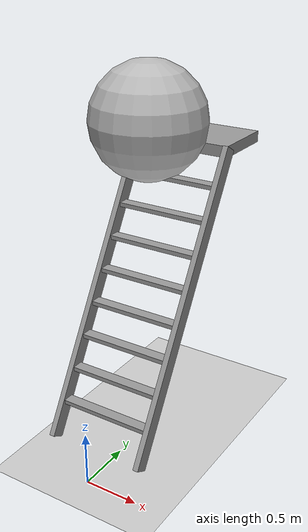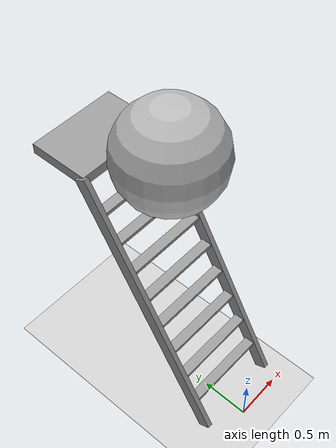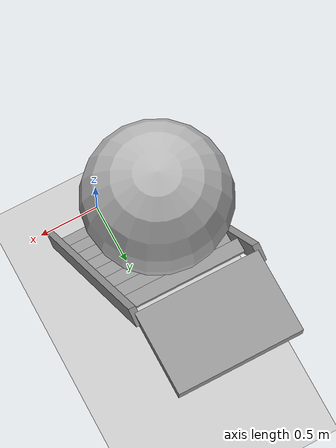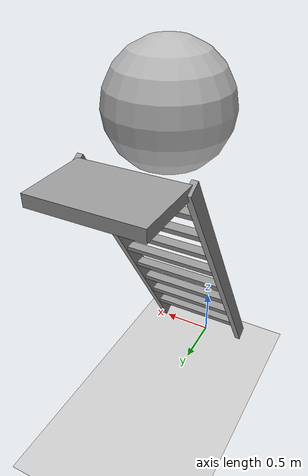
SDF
<sdf version="1.6">
 <world name="default">
  <include><uri>model://ground_plane</uri></include>
  <include><uri>model://ladder_60deg_0rails</uri><pose>0 0.15396 0.266667 0 -0 0</pose></include>
  <light type="directional" name="sun">
   <pose>0 0 10 0 0 0</pose>
   <diffuse>0.8 0.8 0.8 1</diffuse>
   <specular>0.2 0.2 0.2 1</specular>
   <attenuation>
    <range>1000</range>
    <constant>0.9</constant>
    <linear>0.01</linear>
    <quadratic>0.001</quadratic>
   </attenuation>
   <direction>-0.5 0.9 -0.1</direction>
  </light>
  <model name="unit_sphere">
   <pose>0 1 3 0 0 0</pose>
   <link name="only_link">
    <visual name="visual"><geometry><sphere><radius>0.5</radius></sphere></geometry></visual>
    <collision name="collision"><geometry><sphere><radius>0.5</radius></sphere></geometry></collision>
   </link>
  </model>
  <plugin name="sunPlugin" filename="libspicyboi_sun.so"/>
 </world>
</sdf>

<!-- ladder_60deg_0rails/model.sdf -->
<sdf version="1.5">

  <model name= "ladder_60deg_0rails" >
    <static>true</static>
         <link name="step0" >
           <pose>0 0.15396007178390025 0.26666666666666666 0 0 0 </pose>
           <inertial>
             <mass> 9.7548192</mass>
             <inertia>
             <ixx> 0.009571241631672</ixx>
             <iyy> 0.6596303120915761</iyy>
             <izz> 0.666841521540096</izz>
             <ixy>0</ixy>
             <ixz>0</ixz>
             <iyz>0</iyz>
             </inertia>
           </inertial>

           <collision name="collision">
             <geometry>
              <box>
                <size>  0.9  0.1016  0.0381  </size>
              </box>
             </geometry>
           </collision>

          <visual name="visual">
            <geometry>
              <box>
                <size>  0.9  0.1016  0.0381  </size>
              </box>
            </geometry>
            <material>
              <script>
                <uri>file://media/materials/scripts/gazebo.material</uri>
                <name>Gazebo/Grey</name>
              </script>
            </material>
          </visual>
        </link>
         <link name="step1" >
           <pose>0 0.3079201435678005 0.5333333333333333 0 0 0 </pose>
           <inertial>
             <mass> 9.7548192</mass>
             <inertia>
             <ixx> 0.009571241631672</ixx>
             <iyy> 0.6596303120915761</iyy>
             <izz> 0.666841521540096</izz>
             <ixy>0</ixy>
             <ixz>0</ixz>
             <iyz>0</iyz>
             </inertia>
           </inertial>

           <collision name="collision">
             <geometry>
              <box>
                <size>  0.9  0.1016  0.0381  </size>
              </box>
             </geometry>
           </collision>

          <visual name="visual">
            <geometry>
              <box>
                <size>  0.9  0.1016  0.0381  </size>
              </box>
            </geometry>
            <material>
              <script>
                <uri>file://media/materials/scripts/gazebo.material</uri>
                <name>Gazebo/Grey</name>
              </script>
            </material>
          </visual>
        </link>
         <link name="step2" >
           <pose>0 0.46188021535170076 0.8 0 0 0 </pose>
           <inertial>
             <mass> 9.7548192</mass>
             <inertia>
             <ixx> 0.009571241631672</ixx>
             <iyy> 0.6596303120915761</iyy>
             <izz> 0.666841521540096</izz>
             <ixy>0</ixy>
             <ixz>0</ixz>
             <iyz>0</iyz>
             </inertia>
           </inertial>

           <collision name="collision">
             <geometry>
              <box>
                <size>  0.9  0.1016  0.0381  </size>
              </box>
             </geometry>
           </collision>

          <visual name="visual">
            <geometry>
              <box>
                <size>  0.9  0.1016  0.0381  </size>
              </box>
            </geometry>
            <material>
              <script>
                <uri>file://media/materials/scripts/gazebo.material</uri>
                <name>Gazebo/Grey</name>
              </script>
            </material>
          </visual>
        </link>
         <link name="step3" >
           <pose>0 0.615840287135601 1.0666666666666667 0 0 0 </pose>
           <inertial>
             <mass> 9.7548192</mass>
             <inertia>
             <ixx> 0.009571241631672</ixx>
             <iyy> 0.6596303120915761</iyy>
             <izz> 0.666841521540096</izz>
             <ixy>0</ixy>
             <ixz>0</ixz>
             <iyz>0</iyz>
             </inertia>
           </inertial>

           <collision name="collision">
             <geometry>
              <box>
                <size>  0.9  0.1016  0.0381  </size>
              </box>
             </geometry>
           </collision>

          <visual name="visual">
            <geometry>
              <box>
                <size>  0.9  0.1016  0.0381  </size>
              </box>
            </geometry>
            <material>
              <script>
                <uri>file://media/materials/scripts/gazebo.material</uri>
                <name>Gazebo/Grey</name>
              </script>
            </material>
          </visual>
        </link>
         <link name="step4" >
           <pose>0 0.7698003589195013 1.3333333333333333 0 0 0 </pose>
           <inertial>
             <mass> 9.7548192</mass>
             <inertia>
             <ixx> 0.009571241631672</ixx>
             <iyy> 0.6596303120915761</iyy>
             <izz> 0.666841521540096</izz>
             <ixy>0</ixy>
             <ixz>0</ixz>
             <iyz>0</iyz>
             </inertia>
           </inertial>

           <collision name="collision">
             <geometry>
              <box>
                <size>  0.9  0.1016  0.0381  </size>
              </box>
             </geometry>
           </collision>

          <visual name="visual">
            <geometry>
              <box>
                <size>  0.9  0.1016  0.0381  </size>
              </box>
            </geometry>
            <material>
              <script>
                <uri>file://media/materials/scripts/gazebo.material</uri>
                <name>Gazebo/Grey</name>
              </script>
            </material>
          </visual>
        </link>
         <link name="step5" >
           <pose>0 0.9237604307034015 1.6 0 0 0 </pose>
           <inertial>
             <mass> 9.7548192</mass>
             <inertia>
             <ixx> 0.009571241631672</ixx>
             <iyy> 0.6596303120915761</iyy>
             <izz> 0.666841521540096</izz>
             <ixy>0</ixy>
             <ixz>0</ixz>
             <iyz>0</iyz>
             </inertia>
           </inertial>

           <collision name="collision">
             <geometry>
              <box>
                <size>  0.9  0.1016  0.0381  </size>
              </box>
             </geometry>
           </collision>

          <visual name="visual">
            <geometry>
              <box>
                <size>  0.9  0.1016  0.0381  </size>
              </box>
            </geometry>
            <material>
              <script>
                <uri>file://media/materials/scripts/gazebo.material</uri>
                <name>Gazebo/Grey</name>
              </script>
            </material>
          </visual>
        </link>
         <link name="step6" >
           <pose>0 1.0777205024873018 1.8666666666666667 0 0 0 </pose>
           <inertial>
             <mass> 9.7548192</mass>
             <inertia>
             <ixx> 0.009571241631672</ixx>
             <iyy> 0.6596303120915761</iyy>
             <izz> 0.666841521540096</izz>
             <ixy>0</ixy>
             <ixz>0</ixz>
             <iyz>0</iyz>
             </inertia>
           </inertial>

           <collision name="collision">
             <geometry>
              <box>
                <size>  0.9  0.1016  0.0381  </size>
              </box>
             </geometry>
           </collision>

          <visual name="visual">
            <geometry>
              <box>
                <size>  0.9  0.1016  0.0381  </size>
              </box>
            </geometry>
            <material>
              <script>
                <uri>file://media/materials/scripts/gazebo.material</uri>
                <name>Gazebo/Grey</name>
              </script>
            </material>
          </visual>
        </link>
         <link name="step7" >
           <pose>0 1.231680574271202 2.1333333333333333 0 0 0 </pose>
           <inertial>
             <mass> 9.7548192</mass>
             <inertia>
             <ixx> 0.009571241631672</ixx>
             <iyy> 0.6596303120915761</iyy>
             <izz> 0.666841521540096</izz>
             <ixy>0</ixy>
             <ixz>0</ixz>
             <iyz>0</iyz>
             </inertia>
           </inertial>

           <collision name="collision">
             <geometry>
              <box>
                <size>  0.9  0.1016  0.0381  </size>
              </box>
             </geometry>
           </collision>

          <visual name="visual">
            <geometry>
              <box>
                <size>  0.9  0.1016  0.0381  </size>
              </box>
            </geometry>
            <material>
              <script>
                <uri>file://media/materials/scripts/gazebo.material</uri>
                <name>Gazebo/Grey</name>
              </script>
            </material>
          </visual>
        </link>
    <link name="landing">
      <pose>0 1.6856406460551023 2.4 0 0 0 </pose>
        <inertial>
          <mass> 57.607200000000006</mass>
          <inertia>
          <ixx> 1.735184598966</ixx>
          <iyy> 3.8954545989660008</iyy>
          <izz> 5.616702</izz>
          <ixy>0</ixy>
          <ixz>0</ixz>
          <iyz>0</iyz>
          </inertia>
        </inertial>

        <collision name="collision">
          <geometry>
           <box>
             <size> 0.9 0.6 0.1016</size>
           </box>
          </geometry>
        </collision>

        <visual name="visual">
          <geometry>
            <box>
             <size> 0.9 0.6 0.1016</size>
            </box>
          </geometry>
          <material>
            <script>
              <uri>file://media/materials/scripts/gazebo.material</uri>
              <name>Gazebo/Grey</name>
            </script>
          </material>
        </visual>
    </link>

      <link name="left_side_wall" >
        <pose>-0.45 0.6928203230275511 1.2 1.0471975511965976 0 0 </pose>
        <collision name="collision">
          <geometry>
            <box>
              <size> 0.0508  2.851281292110204  0.13 </size>
            </box>
          </geometry>
        </collision>

        <visual name="visual">
          <geometry>
            <box>
              <size> 0.0508  2.851281292110204  0.13 </size>
            </box>
          </geometry>
          <material>
            <script>
              <uri>file://media/materials/scripts/gazebo.material</uri>
              <name>Gazebo/Grey</name>
            </script>
          </material>
        </visual>

      </link>
      <link name="right_side_wall" >
        <pose>0.45 0.6928203230275511 1.2 1.0471975511965976 0 0 </pose>
        <collision name="collision">
          <geometry>
            <box>
              <size> 0.0508  2.851281292110204  0.13 </size>
            </box>
          </geometry>
        </collision>

        <visual name="visual">
          <geometry>
            <box>
              <size> 0.0508  2.851281292110204  0.13 </size>
            </box>
          </geometry>
          <material>
            <script>
              <uri>file://media/materials/scripts/gazebo.material</uri>
              <name>Gazebo/Grey</name>
            </script>
          </material>
        </visual>

      </link>

  </model>
</sdf>
